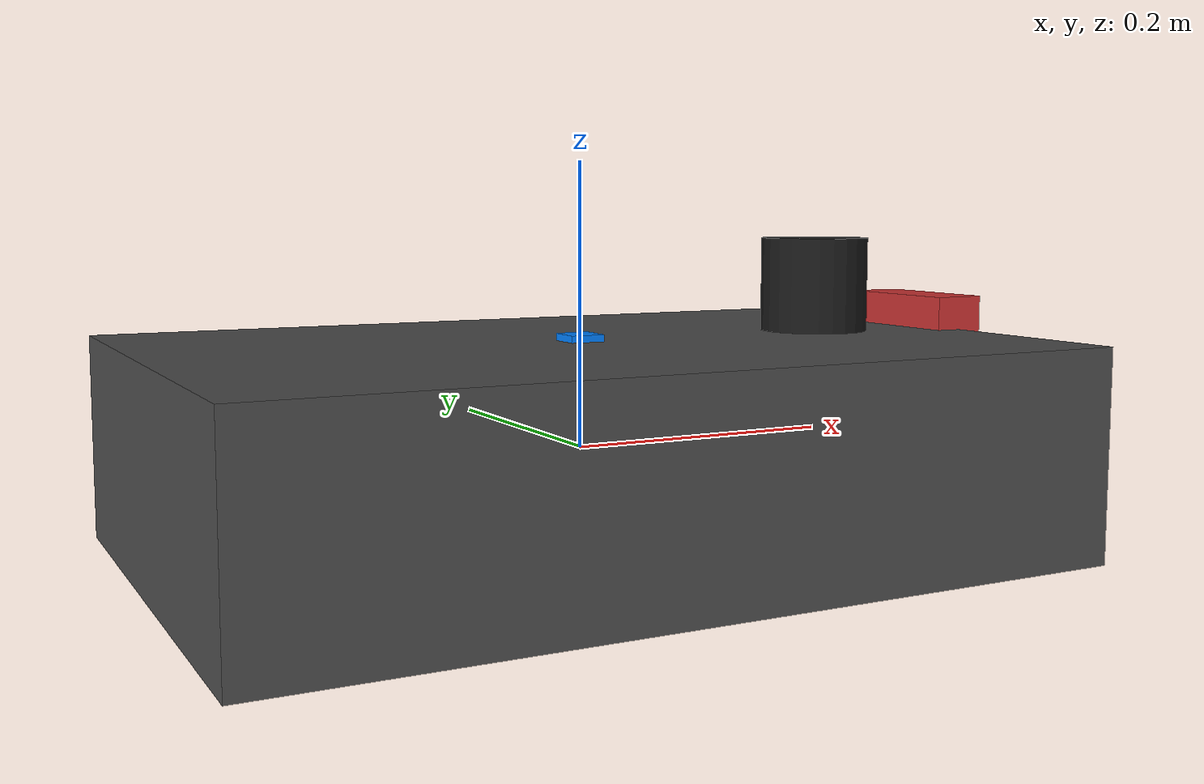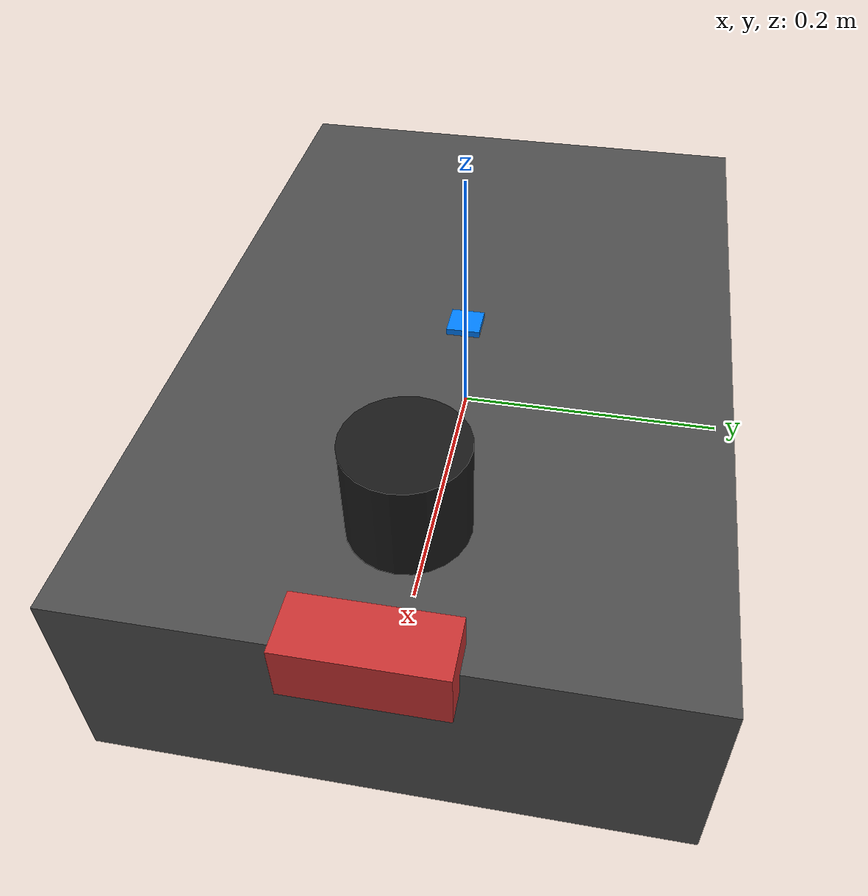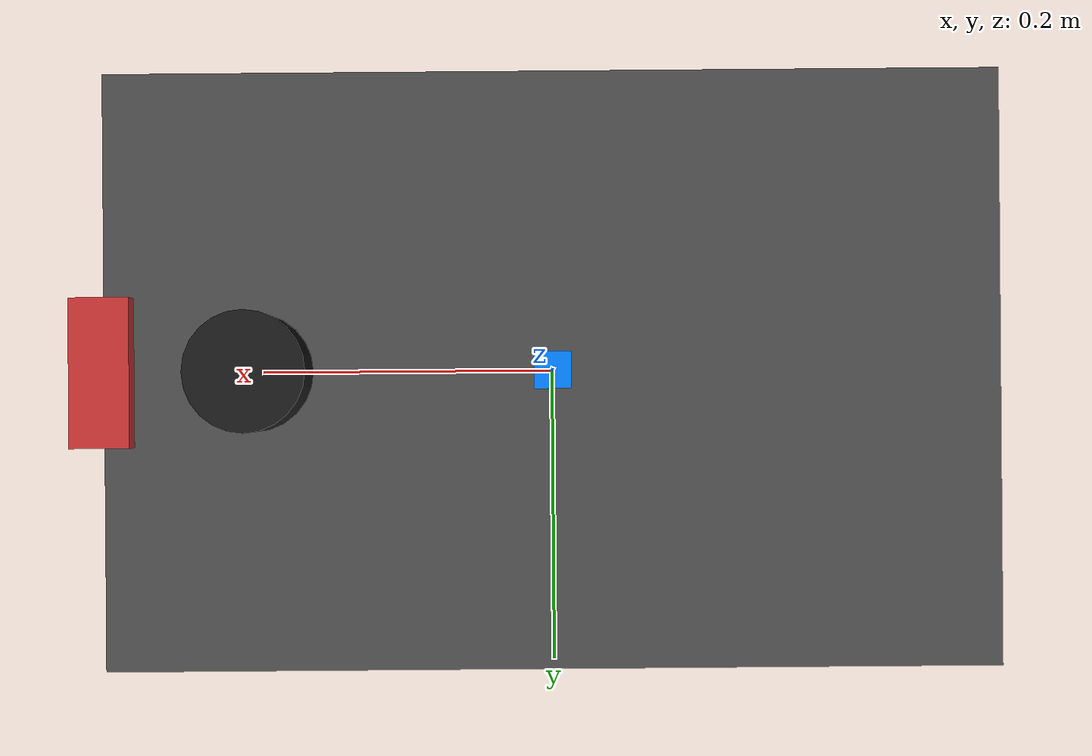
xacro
<?xml version="1.0"?>
<robot name="sensor_test_robot" xmlns:xacro="http://www.ros.org/wiki/xacro">

  <xacro:arg name="prefix"    default=""/>
  <xacro:arg name="namespace" default="sensor_test"/>

  <xacro:property name="prefix_p"    value="$(arg prefix)"/>
  <xacro:property name="ns_p"        value="$(arg namespace)"/>

  <!-- ============================================================
       BASE CHASSIS
  ============================================================ -->
  <link name="${prefix_p}base_link">
    <visual>
      <geometry><box size="0.6 0.4 0.15"/></geometry>
      <material name="chassis_mat">
        <color rgba="0.3 0.3 0.3 1.0"/>
      </material>
    </visual>
    <collision>
      <geometry><box size="0.6 0.4 0.15"/></geometry>
    </collision>
    <inertial>
      <mass value="15.0"/>
      <inertia ixx="0.3" ixy="0.0" ixz="0.0"
               iyy="0.5" iyz="0.0" izz="0.6"/>
    </inertial>
  </link>

  <!-- ============================================================
       IMU LINK
  ============================================================ -->
  <link name="${prefix_p}imu_link">
    <visual>
      <geometry><box size="0.025 0.025 0.01"/></geometry>
      <material name="imu_mat">
        <color rgba="0.0 0.5 1.0 1.0"/>
      </material>
    </visual>
    <inertial>
      <mass value="0.01"/>
      <inertia ixx="0.0000005" ixy="0.0" ixz="0.0"
               iyy="0.0000005" iyz="0.0" izz="0.0000005"/>
    </inertial>
  </link>

  <joint name="${prefix_p}imu_joint" type="fixed">
    <parent link="${prefix_p}base_link"/>
    <child  link="${prefix_p}imu_link"/>
    <origin xyz="0 0 0.075"/>
  </joint>

  <gazebo reference="${prefix_p}imu_link">
    <sensor name="${prefix_p}imu_sensor" type="imu">
      <always_on>1</always_on>
      <update_rate>100</update_rate>
      <imu>
        <angular_velocity>
          <x><noise type="gaussian"><mean>0</mean><stddev>0.009</stddev></noise></x>
          <y><noise type="gaussian"><mean>0</mean><stddev>0.009</stddev></noise></y>
          <z><noise type="gaussian"><mean>0</mean><stddev>0.009</stddev></noise></z>
        </angular_velocity>
        <linear_acceleration>
          <x><noise type="gaussian"><mean>0</mean><stddev>0.1</stddev></noise></x>
          <y><noise type="gaussian"><mean>0</mean><stddev>0.1</stddev></noise></y>
          <z><noise type="gaussian"><mean>0</mean><stddev>0.1</stddev></noise></z>
        </linear_acceleration>
      </imu>
      <topic>${ns_p}/imu/data_raw</topic>
      <gz_frame_id>${prefix_p}imu_link</gz_frame_id>
    </sensor>
  </gazebo>

  <!-- ============================================================
       LIDAR LINK
  ============================================================ -->
  <link name="${prefix_p}laser_link">
    <visual>
      <geometry><cylinder radius="0.04" length="0.07"/></geometry>
      <material name="laser_mat">
        <color rgba="0.1 0.1 0.1 1.0"/>
      </material>
    </visual>
    <collision>
      <geometry><cylinder radius="0.04" length="0.07"/></geometry>
    </collision>
    <inertial>
      <mass value="0.18"/>
      <inertia ixx="0.0002" ixy="0.0" ixz="0.0"
               iyy="0.0002" iyz="0.0" izz="0.0001"/>
    </inertial>
  </link>

  <joint name="${prefix_p}laser_joint" type="fixed">
    <parent link="${prefix_p}base_link"/>
    <child  link="${prefix_p}laser_link"/>
    <origin xyz="0.2 0 0.11"/>
  </joint>

  <gazebo reference="${prefix_p}laser_link">
    <sensor name="${prefix_p}lidar" type="gpu_lidar">
      <always_on>1</always_on>
      <update_rate>10</update_rate>
      <lidar>
        <scan>
          <horizontal>
            <samples>360</samples>
            <resolution>1</resolution>
            <min_angle>-3.14159265</min_angle>
            <max_angle>3.14159265</max_angle>
          </horizontal>
        </scan>
        <range>
          <min>0.08</min>
          <max>30.0</max>
          <resolution>0.01</resolution>
        </range>
        <!-- SDF lidar noise: type is a child element, not an attribute -->
        <noise>
          <type>gaussian</type>
          <mean>0.0</mean>
          <stddev>0.01</stddev>
        </noise>
      </lidar>
      <topic>${ns_p}/scan</topic>
      <gz_frame_id>${prefix_p}laser_link</gz_frame_id>
    </sensor>
  </gazebo>

  <!-- ============================================================
       CAMERA LINK
  ============================================================ -->
  <link name="${prefix_p}camera_link">
    <visual>
      <geometry><box size="0.04 0.1 0.04"/></geometry>
      <material name="camera_mat">
        <color rgba="0.8 0.2 0.2 1.0"/>
      </material>
    </visual>
    <inertial>
      <mass value="0.1"/>
      <inertia ixx="0.00005" ixy="0.0" ixz="0.0"
               iyy="0.00005" iyz="0.0" izz="0.00005"/>
    </inertial>
  </link>

  <joint name="${prefix_p}camera_joint" type="fixed">
    <parent link="${prefix_p}base_link"/>
    <child  link="${prefix_p}camera_link"/>
    <origin xyz="0.3 0 0.08"/>
  </joint>

  <!-- Optical frame (ROS convention: Z forward → rotated from URDF default) -->
  <link name="${prefix_p}camera_optical_frame"/>
  <joint name="${prefix_p}camera_optical_joint" type="fixed">
    <parent link="${prefix_p}camera_link"/>
    <child  link="${prefix_p}camera_optical_frame"/>
    <origin rpy="-1.5708 0 -1.5708"/>
  </joint>

  <!-- Camera sensor (RGB, 640×480, 30 Hz) -->
  <gazebo reference="${prefix_p}camera_link">
    <sensor name="${prefix_p}camera" type="camera">
      <always_on>1</always_on>
      <update_rate>30</update_rate>
      <camera>
        <horizontal_fov>1.3962634</horizontal_fov>
        <image>
          <width>640</width>
          <height>480</height>
          <format>R8G8B8</format>
        </image>
        <clip>
          <near>0.02</near>
          <far>300</far>
        </clip>
        <noise>
          <type>gaussian</type>
          <mean>0.0</mean>
          <stddev>0.007</stddev>
        </noise>
      </camera>
      <topic>${ns_p}/camera/image_raw</topic>
      <gz_frame_id>${prefix_p}camera_optical_frame</gz_frame_id>
    </sensor>
  </gazebo>

  <!-- No model-level system plugins needed for this test model.
       Sensor pipeline (gz-sim-sensors-system, gz-sim-imu-system) must be
       loaded at world level — see test/worlds/importer_test.sdf. -->

</robot>
